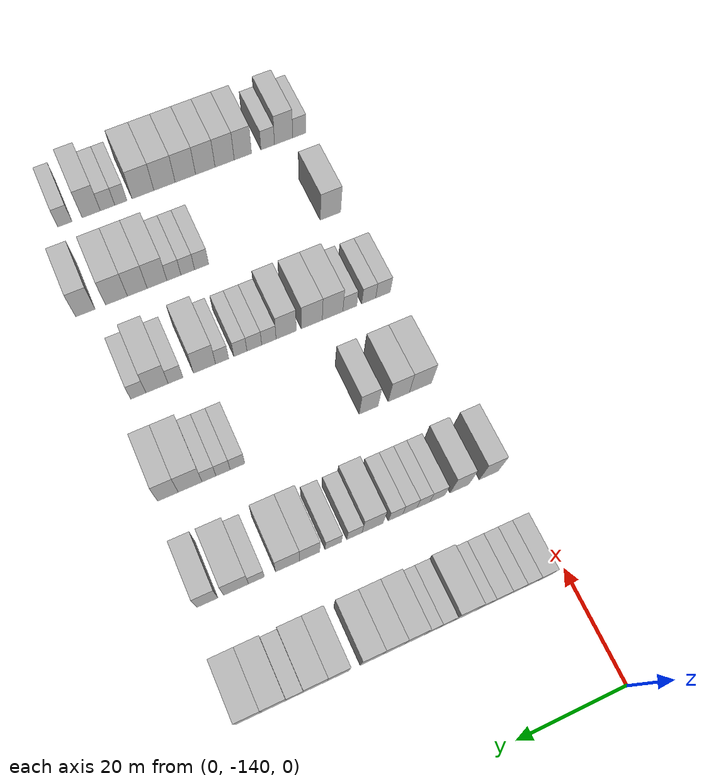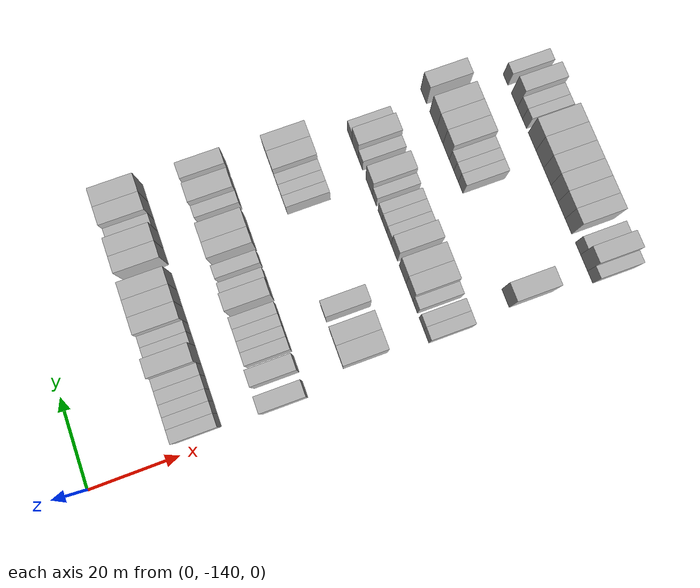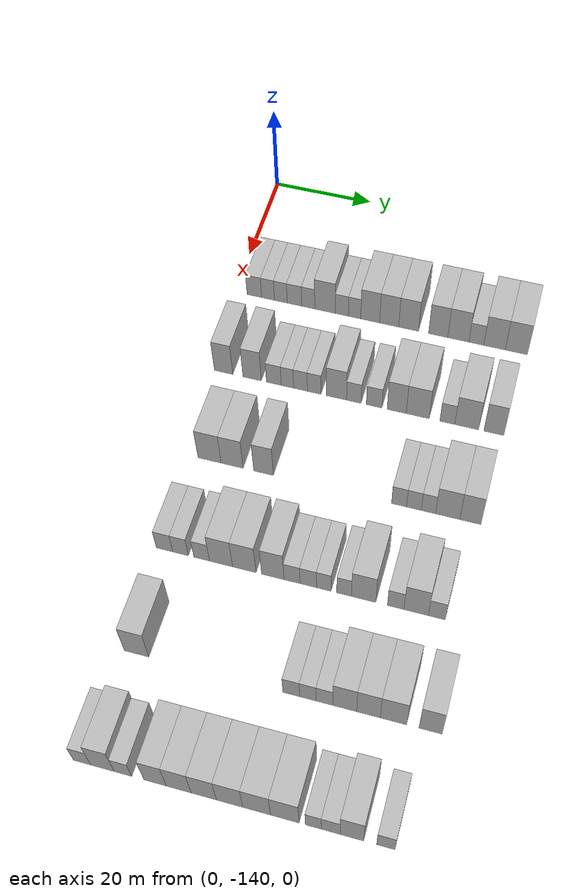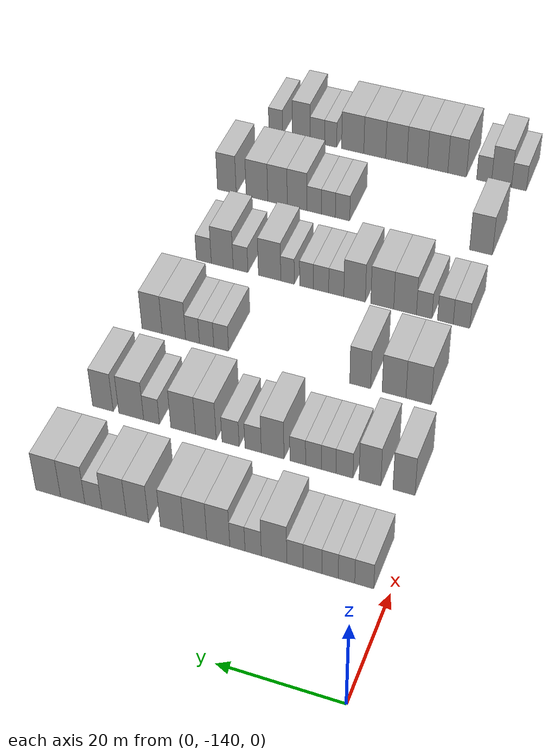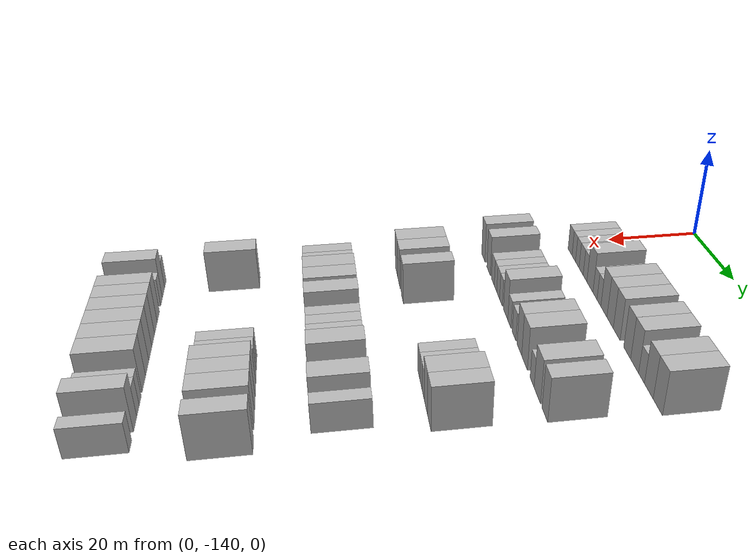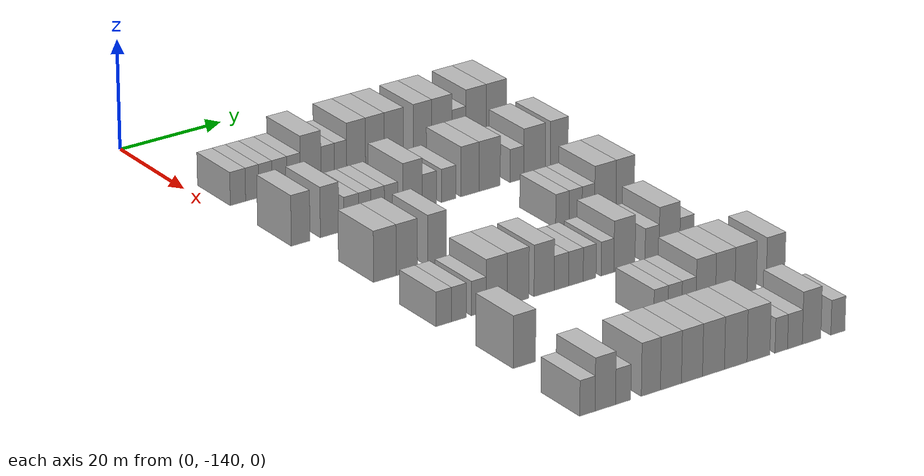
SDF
<sdf version="1.6">
 <world name="default">
  <model name="building_39">
   <static>1</static>
   <pose>25.0000 -135.8840 0 0.000000 0.000000 0.000000</pose>
   <link name="link">
    <pose>0 0 3.00 0 0 0</pose>
    <collision name="collision"><geometry><box><size>10.0000 2.9980 6.0000</size></box></geometry></collision>
    <visual name="visual">
     <cast_shadows>0</cast_shadows>
     <geometry><box><size>10.0000 2.9980 6.0000</size></box></geometry>
     <material>
      <script>
       <uri>model://HANNAS_wall/materials/scripts</uri>
       <uri>model://HANNAS_wall/materials/textures</uri>
       <name>vrc/HANNAS_wall</name>
      </script>
     </material>
    </visual>
   </link>
  </model>
  <model name="building_40">
   <static>1</static>
   <pose>25.0000 -133.0798 0 0.000000 0.000000 0.000000</pose>
   <link name="link">
    <pose>0 0 3.00 0 0 0</pose>
    <collision name="collision"><geometry><box><size>10.0000 2.6105 6.0000</size></box></geometry></collision>
    <visual name="visual">
     <cast_shadows>0</cast_shadows>
     <geometry><box><size>10.0000 2.6105 6.0000</size></box></geometry>
     <material>
      <script>
       <uri>model://HANNAS_wall/materials/scripts</uri>
       <uri>model://HANNAS_wall/materials/textures</uri>
       <name>vrc/HANNAS_wall</name>
      </script>
     </material>
    </visual>
   </link>
  </model>
  <model name="building_41">
   <static>1</static>
   <pose>25.0000 -130.4676 0 0.000000 0.000000 0.000000</pose>
   <link name="link">
    <pose>0 0 3.00 0 0 0</pose>
    <collision name="collision"><geometry><box><size>10.0000 2.6140 6.0000</size></box></geometry></collision>
    <visual name="visual">
     <cast_shadows>0</cast_shadows>
     <geometry><box><size>10.0000 2.6140 6.0000</size></box></geometry>
     <material>
      <script>
       <uri>model://HANNAS_wall/materials/scripts</uri>
       <uri>model://HANNAS_wall/materials/textures</uri>
       <name>vrc/HANNAS_wall</name>
      </script>
     </material>
    </visual>
   </link>
  </model>
  <model name="building_42">
   <static>1</static>
   <pose>25.0000 -127.6731 0 0.000000 0.000000 0.000000</pose>
   <link name="link">
    <pose>0 0 3.00 0 0 0</pose>
    <collision name="collision"><geometry><box><size>10.0000 2.9750 6.0000</size></box></geometry></collision>
    <visual name="visual">
     <cast_shadows>0</cast_shadows>
     <geometry><box><size>10.0000 2.9750 6.0000</size></box></geometry>
     <material>
      <script>
       <uri>model://HANNAS_wall/materials/scripts</uri>
       <uri>model://HANNAS_wall/materials/textures</uri>
       <name>vrc/HANNAS_wall</name>
      </script>
     </material>
    </visual>
   </link>
  </model>
  <model name="building_43">
   <static>1</static>
   <pose>25.0000 -124.8753 0 0.000000 0.000000 0.000000</pose>
   <link name="link">
    <pose>0 0 3.00 0 0 0</pose>
    <collision name="collision"><geometry><box><size>10.0000 2.6206 6.0000</size></box></geometry></collision>
    <visual name="visual">
     <cast_shadows>0</cast_shadows>
     <geometry><box><size>10.0000 2.6206 6.0000</size></box></geometry>
     <material>
      <script>
       <uri>model://HANNAS_wall/materials/scripts</uri>
       <uri>model://HANNAS_wall/materials/textures</uri>
       <name>vrc/HANNAS_wall</name>
      </script>
     </material>
    </visual>
   </link>
  </model>
  <model name="building_44">
   <static>1</static>
   <pose>25.0000 -121.4992 0 0.000000 0.000000 0.000000</pose>
   <link name="link">
    <pose>0 0 4.50 0 0 0</pose>
    <collision name="collision"><geometry><box><size>10.0000 4.1316 9.0000</size></box></geometry></collision>
    <visual name="visual">
     <cast_shadows>0</cast_shadows>
     <geometry><box><size>10.0000 4.1316 9.0000</size></box></geometry>
     <material>
      <script>
       <uri>model://HANNAS_wall/materials/scripts</uri>
       <uri>model://HANNAS_wall/materials/textures</uri>
       <name>vrc/HANNAS_wall</name>
      </script>
     </material>
    </visual>
   </link>
  </model>
  <model name="building_45">
   <static>1</static>
   <pose>25.0000 -118.1087 0 0.000000 0.000000 0.000000</pose>
   <link name="link">
    <pose>0 0 3.00 0 0 0</pose>
    <collision name="collision"><geometry><box><size>10.0000 2.6494 6.0000</size></box></geometry></collision>
    <visual name="visual">
     <cast_shadows>0</cast_shadows>
     <geometry><box><size>10.0000 2.6494 6.0000</size></box></geometry>
     <material>
      <script>
       <uri>model://HANNAS_wall/materials/scripts</uri>
       <uri>model://HANNAS_wall/materials/textures</uri>
       <name>vrc/HANNAS_wall</name>
      </script>
     </material>
    </visual>
   </link>
  </model>
  <model name="building_46">
   <static>1</static>
   <pose>25.0000 -115.5429 0 0.000000 0.000000 0.000000</pose>
   <link name="link">
    <pose>0 0 3.00 0 0 0</pose>
    <collision name="collision"><geometry><box><size>10.0000 2.4822 6.0000</size></box></geometry></collision>
    <visual name="visual">
     <cast_shadows>0</cast_shadows>
     <geometry><box><size>10.0000 2.4822 6.0000</size></box></geometry>
     <material>
      <script>
       <uri>model://HANNAS_wall/materials/scripts</uri>
       <uri>model://HANNAS_wall/materials/textures</uri>
       <name>vrc/HANNAS_wall</name>
      </script>
     </material>
    </visual>
   </link>
  </model>
  <model name="building_47">
   <static>1</static>
   <pose>25.0000 -112.4067 0 0.000000 0.000000 0.000000</pose>
   <link name="link">
    <pose>0 0 4.50 0 0 0</pose>
    <collision name="collision"><geometry><box><size>10.0000 3.7904 9.0000</size></box></geometry></collision>
    <visual name="visual">
     <cast_shadows>0</cast_shadows>
     <geometry><box><size>10.0000 3.7904 9.0000</size></box></geometry>
     <material>
      <script>
       <uri>model://HANNAS_wall/materials/scripts</uri>
       <uri>model://HANNAS_wall/materials/textures</uri>
       <name>vrc/HANNAS_wall</name>
      </script>
     </material>
    </visual>
   </link>
  </model>
  <model name="building_48">
   <static>1</static>
   <pose>25.0000 -108.6141 0 0.000000 0.000000 0.000000</pose>
   <link name="link">
    <pose>0 0 4.50 0 0 0</pose>
    <collision name="collision"><geometry><box><size>10.0000 3.7948 9.0000</size></box></geometry></collision>
    <visual name="visual">
     <cast_shadows>0</cast_shadows>
     <geometry><box><size>10.0000 3.7948 9.0000</size></box></geometry>
     <material>
      <script>
       <uri>model://HANNAS_wall/materials/scripts</uri>
       <uri>model://HANNAS_wall/materials/textures</uri>
       <name>vrc/HANNAS_wall</name>
      </script>
     </material>
    </visual>
   </link>
  </model>
  <model name="building_49">
   <static>1</static>
   <pose>25.0000 -104.7550 0 0.000000 0.000000 0.000000</pose>
   <link name="link">
    <pose>0 0 4.50 0 0 0</pose>
    <collision name="collision"><geometry><box><size>10.0000 3.9233 9.0000</size></box></geometry></collision>
    <visual name="visual">
     <cast_shadows>0</cast_shadows>
     <geometry><box><size>10.0000 3.9233 9.0000</size></box></geometry>
     <material>
      <script>
       <uri>model://HANNAS_wall/materials/scripts</uri>
       <uri>model://HANNAS_wall/materials/textures</uri>
       <name>vrc/HANNAS_wall</name>
      </script>
     </material>
    </visual>
   </link>
  </model>
  <model name="building_50">
   <static>1</static>
   <pose>25.0000 -98.9192 0 0.000000 0.000000 0.000000</pose>
   <link name="link">
    <pose>0 0 4.50 0 0 0</pose>
    <collision name="collision"><geometry><box><size>10.0000 3.7483 9.0000</size></box></geometry></collision>
    <visual name="visual">
     <cast_shadows>0</cast_shadows>
     <geometry><box><size>10.0000 3.7483 9.0000</size></box></geometry>
     <material>
      <script>
       <uri>model://HANNAS_wall/materials/scripts</uri>
       <uri>model://HANNAS_wall/materials/textures</uri>
       <name>vrc/HANNAS_wall</name>
      </script>
     </material>
    </visual>
   </link>
  </model>
  <model name="building_51">
   <static>1</static>
   <pose>25.0000 -94.9759 0 0.000000 0.000000 0.000000</pose>
   <link name="link">
    <pose>0 0 4.50 0 0 0</pose>
    <collision name="collision"><geometry><box><size>10.0000 4.1382 9.0000</size></box></geometry></collision>
    <visual name="visual">
     <cast_shadows>0</cast_shadows>
     <geometry><box><size>10.0000 4.1382 9.0000</size></box></geometry>
     <material>
      <script>
       <uri>model://HANNAS_wall/materials/scripts</uri>
       <uri>model://HANNAS_wall/materials/textures</uri>
       <name>vrc/HANNAS_wall</name>
      </script>
     </material>
    </visual>
   </link>
  </model>
  <model name="building_52">
   <static>1</static>
   <pose>25.0000 -91.4587 0 0.000000 0.000000 0.000000</pose>
   <link name="link">
    <pose>0 0 3.00 0 0 0</pose>
    <collision name="collision"><geometry><box><size>10.0000 2.8963 6.0000</size></box></geometry></collision>
    <visual name="visual">
     <cast_shadows>0</cast_shadows>
     <geometry><box><size>10.0000 2.8963 6.0000</size></box></geometry>
     <material>
      <script>
       <uri>model://HANNAS_wall/materials/scripts</uri>
       <uri>model://HANNAS_wall/materials/textures</uri>
       <name>vrc/HANNAS_wall</name>
      </script>
     </material>
    </visual>
   </link>
  </model>
  <model name="building_53">
   <static>1</static>
   <pose>25.0000 -87.9144 0 0.000000 0.000000 0.000000</pose>
   <link name="link">
    <pose>0 0 4.50 0 0 0</pose>
    <collision name="collision"><geometry><box><size>10.0000 4.1924 9.0000</size></box></geometry></collision>
    <visual name="visual">
     <cast_shadows>0</cast_shadows>
     <geometry><box><size>10.0000 4.1924 9.0000</size></box></geometry>
     <material>
      <script>
       <uri>model://HANNAS_wall/materials/scripts</uri>
       <uri>model://HANNAS_wall/materials/textures</uri>
       <name>vrc/HANNAS_wall</name>
      </script>
     </material>
    </visual>
   </link>
  </model>
  <model name="building_54">
   <static>1</static>
   <pose>25.0000 -83.6774 0 0.000000 0.000000 0.000000</pose>
   <link name="link">
    <pose>0 0 4.50 0 0 0</pose>
    <collision name="collision"><geometry><box><size>10.0000 4.2815 9.0000</size></box></geometry></collision>
    <visual name="visual">
     <cast_shadows>0</cast_shadows>
     <geometry><box><size>10.0000 4.2815 9.0000</size></box></geometry>
     <material>
      <script>
       <uri>model://HANNAS_wall/materials/scripts</uri>
       <uri>model://HANNAS_wall/materials/textures</uri>
       <name>vrc/HANNAS_wall</name>
      </script>
     </material>
    </visual>
   </link>
  </model>
  <model name="building_210">
   <static>1</static>
   <pose>44.0000 -136.1075 0 0.000000 0.000000 0.000000</pose>
   <link name="link">
    <pose>0 0 4.50 0 0 0</pose>
    <collision name="collision"><geometry><box><size>10.0000 3.6342 9.0000</size></box></geometry></collision>
    <visual name="visual">
     <cast_shadows>0</cast_shadows>
     <geometry><box><size>10.0000 3.6342 9.0000</size></box></geometry>
     <material>
      <script>
       <uri>model://HANNAS_wall/materials/scripts</uri>
       <uri>model://HANNAS_wall/materials/textures</uri>
       <name>vrc/HANNAS_wall</name>
      </script>
     </material>
    </visual>
   </link>
  </model>
  <model name="building_211">
   <static>1</static>
   <pose>44.0000 -130.4828 0 0.000000 0.000000 0.000000</pose>
   <link name="link">
    <pose>0 0 4.50 0 0 0</pose>
    <collision name="collision"><geometry><box><size>10.0000 3.6153 9.0000</size></box></geometry></collision>
    <visual name="visual">
     <cast_shadows>0</cast_shadows>
     <geometry><box><size>10.0000 3.6153 9.0000</size></box></geometry>
     <material>
      <script>
       <uri>model://HANNAS_wall/materials/scripts</uri>
       <uri>model://HANNAS_wall/materials/textures</uri>
       <name>vrc/HANNAS_wall</name>
      </script>
     </material>
    </visual>
   </link>
  </model>
  <model name="building_212">
   <static>1</static>
   <pose>44.0000 -126.2395 0 0.000000 0.000000 0.000000</pose>
   <link name="link">
    <pose>0 0 3.00 0 0 0</pose>
    <collision name="collision"><geometry><box><size>10.0000 2.8714 6.0000</size></box></geometry></collision>
    <visual name="visual">
     <cast_shadows>0</cast_shadows>
     <geometry><box><size>10.0000 2.8714 6.0000</size></box></geometry>
     <material>
      <script>
       <uri>model://HANNAS_wall/materials/scripts</uri>
       <uri>model://HANNAS_wall/materials/textures</uri>
       <name>vrc/HANNAS_wall</name>
      </script>
     </material>
    </visual>
   </link>
  </model>
  <model name="building_213">
   <static>1</static>
   <pose>44.0000 -123.5858 0 0.000000 0.000000 0.000000</pose>
   <link name="link">
    <pose>0 0 3.00 0 0 0</pose>
    <collision name="collision"><geometry><box><size>10.0000 2.4358 6.0000</size></box></geometry></collision>
    <visual name="visual">
     <cast_shadows>0</cast_shadows>
     <geometry><box><size>10.0000 2.4358 6.0000</size></box></geometry>
     <material>
      <script>
       <uri>model://HANNAS_wall/materials/scripts</uri>
       <uri>model://HANNAS_wall/materials/textures</uri>
       <name>vrc/HANNAS_wall</name>
      </script>
     </material>
    </visual>
   </link>
  </model>
  <model name="building_214">
   <static>1</static>
   <pose>44.0000 -121.0321 0 0.000000 0.000000 0.000000</pose>
   <link name="link">
    <pose>0 0 3.00 0 0 0</pose>
    <collision name="collision"><geometry><box><size>10.0000 2.6716 6.0000</size></box></geometry></collision>
    <visual name="visual">
     <cast_shadows>0</cast_shadows>
     <geometry><box><size>10.0000 2.6716 6.0000</size></box></geometry>
     <material>
      <script>
       <uri>model://HANNAS_wall/materials/scripts</uri>
       <uri>model://HANNAS_wall/materials/textures</uri>
       <name>vrc/HANNAS_wall</name>
      </script>
     </material>
    </visual>
   </link>
  </model>
  <model name="building_215">
   <static>1</static>
   <pose>44.0000 -118.3728 0 0.000000 0.000000 0.000000</pose>
   <link name="link">
    <pose>0 0 3.00 0 0 0</pose>
    <collision name="collision"><geometry><box><size>10.0000 2.6471 6.0000</size></box></geometry></collision>
    <visual name="visual">
     <cast_shadows>0</cast_shadows>
     <geometry><box><size>10.0000 2.6471 6.0000</size></box></geometry>
     <material>
      <script>
       <uri>model://HANNAS_wall/materials/scripts</uri>
       <uri>model://HANNAS_wall/materials/textures</uri>
       <name>vrc/HANNAS_wall</name>
      </script>
     </material>
    </visual>
   </link>
  </model>
  <model name="building_216">
   <static>1</static>
   <pose>44.0000 -114.1024 0 0.000000 0.000000 0.000000</pose>
   <link name="link">
    <pose>0 0 4.50 0 0 0</pose>
    <collision name="collision"><geometry><box><size>10.0000 3.8936 9.0000</size></box></geometry></collision>
    <visual name="visual">
     <cast_shadows>0</cast_shadows>
     <geometry><box><size>10.0000 3.8936 9.0000</size></box></geometry>
     <material>
      <script>
       <uri>model://HANNAS_wall/materials/scripts</uri>
       <uri>model://HANNAS_wall/materials/textures</uri>
       <name>vrc/HANNAS_wall</name>
      </script>
     </material>
    </visual>
   </link>
  </model>
  <model name="building_217">
   <static>1</static>
   <pose>44.0000 -110.7569 0 0.000000 0.000000 0.000000</pose>
   <link name="link">
    <pose>0 0 3.00 0 0 0</pose>
    <collision name="collision"><geometry><box><size>10.0000 2.7974 6.0000</size></box></geometry></collision>
    <visual name="visual">
     <cast_shadows>0</cast_shadows>
     <geometry><box><size>10.0000 2.7974 6.0000</size></box></geometry>
     <material>
      <script>
       <uri>model://HANNAS_wall/materials/scripts</uri>
       <uri>model://HANNAS_wall/materials/textures</uri>
       <name>vrc/HANNAS_wall</name>
      </script>
     </material>
    </visual>
   </link>
  </model>
  <model name="building_218">
   <static>1</static>
   <pose>44.0000 -106.8713 0 0.000000 0.000000 0.000000</pose>
   <link name="link">
    <pose>0 0 3.00 0 0 0</pose>
    <collision name="collision"><geometry><box><size>10.0000 2.9740 6.0000</size></box></geometry></collision>
    <visual name="visual">
     <cast_shadows>0</cast_shadows>
     <geometry><box><size>10.0000 2.9740 6.0000</size></box></geometry>
     <material>
      <script>
       <uri>model://HANNAS_wall/materials/scripts</uri>
       <uri>model://HANNAS_wall/materials/textures</uri>
       <name>vrc/HANNAS_wall</name>
      </script>
     </material>
    </visual>
   </link>
  </model>
  <model name="building_219">
   <static>1</static>
   <pose>44.0000 -102.5783 0 0.000000 0.000000 0.000000</pose>
   <link name="link">
    <pose>0 0 4.50 0 0 0</pose>
    <collision name="collision"><geometry><box><size>10.0000 3.6120 9.0000</size></box></geometry></collision>
    <visual name="visual">
     <cast_shadows>0</cast_shadows>
     <geometry><box><size>10.0000 3.6120 9.0000</size></box></geometry>
     <material>
      <script>
       <uri>model://HANNAS_wall/materials/scripts</uri>
       <uri>model://HANNAS_wall/materials/textures</uri>
       <name>vrc/HANNAS_wall</name>
      </script>
     </material>
    </visual>
   </link>
  </model>
  <model name="building_220">
   <static>1</static>
   <pose>44.0000 -98.6021 0 0.000000 0.000000 0.000000</pose>
   <link name="link">
    <pose>0 0 4.50 0 0 0</pose>
    <collision name="collision"><geometry><box><size>10.0000 4.3403 9.0000</size></box></geometry></collision>
    <visual name="visual">
     <cast_shadows>0</cast_shadows>
     <geometry><box><size>10.0000 4.3403 9.0000</size></box></geometry>
     <material>
      <script>
       <uri>model://HANNAS_wall/materials/scripts</uri>
       <uri>model://HANNAS_wall/materials/textures</uri>
       <name>vrc/HANNAS_wall</name>
      </script>
     </material>
    </visual>
   </link>
  </model>
  <model name="building_221">
   <static>1</static>
   <pose>44.0000 -93.0292 0 0.000000 0.000000 0.000000</pose>
   <link name="link">
    <pose>0 0 3.00 0 0 0</pose>
    <collision name="collision"><geometry><box><size>10.0000 2.8056 6.0000</size></box></geometry></collision>
    <visual name="visual">
     <cast_shadows>0</cast_shadows>
     <geometry><box><size>10.0000 2.8056 6.0000</size></box></geometry>
     <material>
      <script>
       <uri>model://HANNAS_wall/materials/scripts</uri>
       <uri>model://HANNAS_wall/materials/textures</uri>
       <name>vrc/HANNAS_wall</name>
      </script>
     </material>
    </visual>
   </link>
  </model>
  <model name="building_222">
   <static>1</static>
   <pose>44.0000 -89.4139 0 0.000000 0.000000 0.000000</pose>
   <link name="link">
    <pose>0 0 4.50 0 0 0</pose>
    <collision name="collision"><geometry><box><size>10.0000 4.4248 9.0000</size></box></geometry></collision>
    <visual name="visual">
     <cast_shadows>0</cast_shadows>
     <geometry><box><size>10.0000 4.4248 9.0000</size></box></geometry>
     <material>
      <script>
       <uri>model://HANNAS_wall/materials/scripts</uri>
       <uri>model://HANNAS_wall/materials/textures</uri>
       <name>vrc/HANNAS_wall</name>
      </script>
     </material>
    </visual>
   </link>
  </model>
  <model name="building_223">
   <static>1</static>
   <pose>44.0000 -84.3524 0 0.000000 0.000000 0.000000</pose>
   <link name="link">
    <pose>0 0 4.50 0 0 0</pose>
    <collision name="collision"><geometry><box><size>10.0000 3.6982 9.0000</size></box></geometry></collision>
    <visual name="visual">
     <cast_shadows>0</cast_shadows>
     <geometry><box><size>10.0000 3.6982 9.0000</size></box></geometry>
     <material>
      <script>
       <uri>model://HANNAS_wall/materials/scripts</uri>
       <uri>model://HANNAS_wall/materials/textures</uri>
       <name>vrc/HANNAS_wall</name>
      </script>
     </material>
    </visual>
   </link>
  </model>
  <model name="building_388">
   <static>1</static>
   <pose>63.0000 -132.6268 0 0.000000 0.000000 0.000000</pose>
   <link name="link">
    <pose>0 0 4.50 0 0 0</pose>
    <collision name="collision"><geometry><box><size>10.0000 4.3635 9.0000</size></box></geometry></collision>
    <visual name="visual">
     <cast_shadows>0</cast_shadows>
     <geometry><box><size>10.0000 4.3635 9.0000</size></box></geometry>
     <material>
      <script>
       <uri>model://HANNAS_wall/materials/scripts</uri>
       <uri>model://HANNAS_wall/materials/textures</uri>
       <name>vrc/HANNAS_wall</name>
      </script>
     </material>
    </visual>
   </link>
  </model>
  <model name="building_389">
   <static>1</static>
   <pose>63.0000 -128.3770 0 0.000000 0.000000 0.000000</pose>
   <link name="link">
    <pose>0 0 4.50 0 0 0</pose>
    <collision name="collision"><geometry><box><size>10.0000 4.1362 9.0000</size></box></geometry></collision>
    <visual name="visual">
     <cast_shadows>0</cast_shadows>
     <geometry><box><size>10.0000 4.1362 9.0000</size></box></geometry>
     <material>
      <script>
       <uri>model://HANNAS_wall/materials/scripts</uri>
       <uri>model://HANNAS_wall/materials/textures</uri>
       <name>vrc/HANNAS_wall</name>
      </script>
     </material>
    </visual>
   </link>
  </model>
  <model name="building_390">
   <static>1</static>
   <pose>63.0000 -122.4811 0 0.000000 0.000000 0.000000</pose>
   <link name="link">
    <pose>0 0 4.50 0 0 0</pose>
    <collision name="collision"><geometry><box><size>10.0000 3.6556 9.0000</size></box></geometry></collision>
    <visual name="visual">
     <cast_shadows>0</cast_shadows>
     <geometry><box><size>10.0000 3.6556 9.0000</size></box></geometry>
     <material>
      <script>
       <uri>model://HANNAS_wall/materials/scripts</uri>
       <uri>model://HANNAS_wall/materials/textures</uri>
       <name>vrc/HANNAS_wall</name>
      </script>
     </material>
    </visual>
   </link>
  </model>
  <model name="building_391">
   <static>1</static>
   <pose>63.0000 -97.6063 0 0.000000 0.000000 0.000000</pose>
   <link name="link">
    <pose>0 0 3.00 0 0 0</pose>
    <collision name="collision"><geometry><box><size>10.0000 2.6980 6.0000</size></box></geometry></collision>
    <visual name="visual">
     <cast_shadows>0</cast_shadows>
     <geometry><box><size>10.0000 2.6980 6.0000</size></box></geometry>
     <material>
      <script>
       <uri>model://HANNAS_wall/materials/scripts</uri>
       <uri>model://HANNAS_wall/materials/textures</uri>
       <name>vrc/HANNAS_wall</name>
      </script>
     </material>
    </visual>
   </link>
  </model>
  <model name="building_392">
   <static>1</static>
   <pose>63.0000 -94.9415 0 0.000000 0.000000 0.000000</pose>
   <link name="link">
    <pose>0 0 3.00 0 0 0</pose>
    <collision name="collision"><geometry><box><size>10.0000 2.6317 6.0000</size></box></geometry></collision>
    <visual name="visual">
     <cast_shadows>0</cast_shadows>
     <geometry><box><size>10.0000 2.6317 6.0000</size></box></geometry>
     <material>
      <script>
       <uri>model://HANNAS_wall/materials/scripts</uri>
       <uri>model://HANNAS_wall/materials/textures</uri>
       <name>vrc/HANNAS_wall</name>
      </script>
     </material>
    </visual>
   </link>
  </model>
  <model name="building_393">
   <static>1</static>
   <pose>63.0000 -92.3491 0 0.000000 0.000000 0.000000</pose>
   <link name="link">
    <pose>0 0 3.00 0 0 0</pose>
    <collision name="collision"><geometry><box><size>10.0000 2.5532 6.0000</size></box></geometry></collision>
    <visual name="visual">
     <cast_shadows>0</cast_shadows>
     <geometry><box><size>10.0000 2.5532 6.0000</size></box></geometry>
     <material>
      <script>
       <uri>model://HANNAS_wall/materials/scripts</uri>
       <uri>model://HANNAS_wall/materials/textures</uri>
       <name>vrc/HANNAS_wall</name>
      </script>
     </material>
    </visual>
   </link>
  </model>
  <model name="building_394">
   <static>1</static>
   <pose>63.0000 -88.8961 0 0.000000 0.000000 0.000000</pose>
   <link name="link">
    <pose>0 0 4.50 0 0 0</pose>
    <collision name="collision"><geometry><box><size>10.0000 4.3529 9.0000</size></box></geometry></collision>
    <visual name="visual">
     <cast_shadows>0</cast_shadows>
     <geometry><box><size>10.0000 4.3529 9.0000</size></box></geometry>
     <material>
      <script>
       <uri>model://HANNAS_wall/materials/scripts</uri>
       <uri>model://HANNAS_wall/materials/textures</uri>
       <name>vrc/HANNAS_wall</name>
      </script>
     </material>
    </visual>
   </link>
  </model>
  <model name="building_395">
   <static>1</static>
   <pose>63.0000 -84.8419 0 0.000000 0.000000 0.000000</pose>
   <link name="link">
    <pose>0 0 4.50 0 0 0</pose>
    <collision name="collision"><geometry><box><size>10.0000 3.7554 9.0000</size></box></geometry></collision>
    <visual name="visual">
     <cast_shadows>0</cast_shadows>
     <geometry><box><size>10.0000 3.7554 9.0000</size></box></geometry>
     <material>
      <script>
       <uri>model://HANNAS_wall/materials/scripts</uri>
       <uri>model://HANNAS_wall/materials/textures</uri>
       <name>vrc/HANNAS_wall</name>
      </script>
     </material>
    </visual>
   </link>
  </model>
  <model name="building_562">
   <static>1</static>
   <pose>82.0000 -134.4826 0 0.000000 0.000000 0.000000</pose>
   <link name="link">
    <pose>0 0 3.00 0 0 0</pose>
    <collision name="collision"><geometry><box><size>10.0000 2.9654 6.0000</size></box></geometry></collision>
    <visual name="visual">
     <cast_shadows>0</cast_shadows>
     <geometry><box><size>10.0000 2.9654 6.0000</size></box></geometry>
     <material>
      <script>
       <uri>model://HANNAS_wall/materials/scripts</uri>
       <uri>model://HANNAS_wall/materials/textures</uri>
       <name>vrc/HANNAS_wall</name>
      </script>
     </material>
    </visual>
   </link>
  </model>
  <model name="building_563">
   <static>1</static>
   <pose>82.0000 -131.5884 0 0.000000 0.000000 0.000000</pose>
   <link name="link">
    <pose>0 0 3.00 0 0 0</pose>
    <collision name="collision"><geometry><box><size>10.0000 2.8230 6.0000</size></box></geometry></collision>
    <visual name="visual">
     <cast_shadows>0</cast_shadows>
     <geometry><box><size>10.0000 2.8230 6.0000</size></box></geometry>
     <material>
      <script>
       <uri>model://HANNAS_wall/materials/scripts</uri>
       <uri>model://HANNAS_wall/materials/textures</uri>
       <name>vrc/HANNAS_wall</name>
      </script>
     </material>
    </visual>
   </link>
  </model>
  <model name="building_564">
   <static>1</static>
   <pose>82.0000 -127.7728 0 0.000000 0.000000 0.000000</pose>
   <link name="link">
    <pose>0 0 3.00 0 0 0</pose>
    <collision name="collision"><geometry><box><size>10.0000 2.8082 6.0000</size></box></geometry></collision>
    <visual name="visual">
     <cast_shadows>0</cast_shadows>
     <geometry><box><size>10.0000 2.8082 6.0000</size></box></geometry>
     <material>
      <script>
       <uri>model://HANNAS_wall/materials/scripts</uri>
       <uri>model://HANNAS_wall/materials/textures</uri>
       <name>vrc/HANNAS_wall</name>
      </script>
     </material>
    </visual>
   </link>
  </model>
  <model name="building_565">
   <static>1</static>
   <pose>82.0000 -124.3037 0 0.000000 0.000000 0.000000</pose>
   <link name="link">
    <pose>0 0 4.50 0 0 0</pose>
    <collision name="collision"><geometry><box><size>10.0000 4.1300 9.0000</size></box></geometry></collision>
    <visual name="visual">
     <cast_shadows>0</cast_shadows>
     <geometry><box><size>10.0000 4.1300 9.0000</size></box></geometry>
     <material>
      <script>
       <uri>model://HANNAS_wall/materials/scripts</uri>
       <uri>model://HANNAS_wall/materials/textures</uri>
       <name>vrc/HANNAS_wall</name>
      </script>
     </material>
    </visual>
   </link>
  </model>
  <model name="building_566">
   <static>1</static>
   <pose>82.0000 -120.1458 0 0.000000 0.000000 0.000000</pose>
   <link name="link">
    <pose>0 0 4.50 0 0 0</pose>
    <collision name="collision"><geometry><box><size>10.0000 4.1858 9.0000</size></box></geometry></collision>
    <visual name="visual">
     <cast_shadows>0</cast_shadows>
     <geometry><box><size>10.0000 4.1858 9.0000</size></box></geometry>
     <material>
      <script>
       <uri>model://HANNAS_wall/materials/scripts</uri>
       <uri>model://HANNAS_wall/materials/textures</uri>
       <name>vrc/HANNAS_wall</name>
      </script>
     </material>
    </visual>
   </link>
  </model>
  <model name="building_567">
   <static>1</static>
   <pose>82.0000 -115.0728 0 0.000000 0.000000 0.000000</pose>
   <link name="link">
    <pose>0 0 4.50 0 0 0</pose>
    <collision name="collision"><geometry><box><size>10.0000 3.9602 9.0000</size></box></geometry></collision>
    <visual name="visual">
     <cast_shadows>0</cast_shadows>
     <geometry><box><size>10.0000 3.9602 9.0000</size></box></geometry>
     <material>
      <script>
       <uri>model://HANNAS_wall/materials/scripts</uri>
       <uri>model://HANNAS_wall/materials/textures</uri>
       <name>vrc/HANNAS_wall</name>
      </script>
     </material>
    </visual>
   </link>
  </model>
  <model name="building_568">
   <static>1</static>
   <pose>82.0000 -111.6844 0 0.000000 0.000000 0.000000</pose>
   <link name="link">
    <pose>0 0 3.00 0 0 0</pose>
    <collision name="collision"><geometry><box><size>10.0000 2.8167 6.0000</size></box></geometry></collision>
    <visual name="visual">
     <cast_shadows>0</cast_shadows>
     <geometry><box><size>10.0000 2.8167 6.0000</size></box></geometry>
     <material>
      <script>
       <uri>model://HANNAS_wall/materials/scripts</uri>
       <uri>model://HANNAS_wall/materials/textures</uri>
       <name>vrc/HANNAS_wall</name>
      </script>
     </material>
    </visual>
   </link>
  </model>
  <model name="building_569">
   <static>1</static>
   <pose>82.0000 -108.8393 0 0.000000 0.000000 0.000000</pose>
   <link name="link">
    <pose>0 0 3.00 0 0 0</pose>
    <collision name="collision"><geometry><box><size>10.0000 2.8734 6.0000</size></box></geometry></collision>
    <visual name="visual">
     <cast_shadows>0</cast_shadows>
     <geometry><box><size>10.0000 2.8734 6.0000</size></box></geometry>
     <material>
      <script>
       <uri>model://HANNAS_wall/materials/scripts</uri>
       <uri>model://HANNAS_wall/materials/textures</uri>
       <name>vrc/HANNAS_wall</name>
      </script>
     </material>
    </visual>
   </link>
  </model>
  <model name="building_570">
   <static>1</static>
   <pose>82.0000 -106.1286 0 0.000000 0.000000 0.000000</pose>
   <link name="link">
    <pose>0 0 3.00 0 0 0</pose>
    <collision name="collision"><geometry><box><size>10.0000 2.5481 6.0000</size></box></geometry></collision>
    <visual name="visual">
     <cast_shadows>0</cast_shadows>
     <geometry><box><size>10.0000 2.5481 6.0000</size></box></geometry>
     <material>
      <script>
       <uri>model://HANNAS_wall/materials/scripts</uri>
       <uri>model://HANNAS_wall/materials/textures</uri>
       <name>vrc/HANNAS_wall</name>
      </script>
     </material>
    </visual>
   </link>
  </model>
  <model name="building_571">
   <static>1</static>
   <pose>82.0000 -102.5843 0 0.000000 0.000000 0.000000</pose>
   <link name="link">
    <pose>0 0 3.00 0 0 0</pose>
    <collision name="collision"><geometry><box><size>10.0000 2.5404 6.0000</size></box></geometry></collision>
    <visual name="visual">
     <cast_shadows>0</cast_shadows>
     <geometry><box><size>10.0000 2.5404 6.0000</size></box></geometry>
     <material>
      <script>
       <uri>model://HANNAS_wall/materials/scripts</uri>
       <uri>model://HANNAS_wall/materials/textures</uri>
       <name>vrc/HANNAS_wall</name>
      </script>
     </material>
    </visual>
   </link>
  </model>
  <model name="building_572">
   <static>1</static>
   <pose>82.0000 -99.2007 0 0.000000 0.000000 0.000000</pose>
   <link name="link">
    <pose>0 0 4.50 0 0 0</pose>
    <collision name="collision"><geometry><box><size>10.0000 4.2269 9.0000</size></box></geometry></collision>
    <visual name="visual">
     <cast_shadows>0</cast_shadows>
     <geometry><box><size>10.0000 4.2269 9.0000</size></box></geometry>
     <material>
      <script>
       <uri>model://HANNAS_wall/materials/scripts</uri>
       <uri>model://HANNAS_wall/materials/textures</uri>
       <name>vrc/HANNAS_wall</name>
      </script>
     </material>
    </visual>
   </link>
  </model>
  <model name="building_573">
   <static>1</static>
   <pose>82.0000 -93.6771 0 0.000000 0.000000 0.000000</pose>
   <link name="link">
    <pose>0 0 3.00 0 0 0</pose>
    <collision name="collision"><geometry><box><size>10.0000 2.8203 6.0000</size></box></geometry></collision>
    <visual name="visual">
     <cast_shadows>0</cast_shadows>
     <geometry><box><size>10.0000 2.8203 6.0000</size></box></geometry>
     <material>
      <script>
       <uri>model://HANNAS_wall/materials/scripts</uri>
       <uri>model://HANNAS_wall/materials/textures</uri>
       <name>vrc/HANNAS_wall</name>
      </script>
     </material>
    </visual>
   </link>
  </model>
  <model name="building_574">
   <static>1</static>
   <pose>82.0000 -90.1739 0 0.000000 0.000000 0.000000</pose>
   <link name="link">
    <pose>0 0 4.50 0 0 0</pose>
    <collision name="collision"><geometry><box><size>10.0000 4.1860 9.0000</size></box></geometry></collision>
    <visual name="visual">
     <cast_shadows>0</cast_shadows>
     <geometry><box><size>10.0000 4.1860 9.0000</size></box></geometry>
     <material>
      <script>
       <uri>model://HANNAS_wall/materials/scripts</uri>
       <uri>model://HANNAS_wall/materials/textures</uri>
       <name>vrc/HANNAS_wall</name>
      </script>
     </material>
    </visual>
   </link>
  </model>
  <model name="building_575">
   <static>1</static>
   <pose>82.0000 -86.6425 0 0.000000 0.000000 0.000000</pose>
   <link name="link">
    <pose>0 0 3.00 0 0 0</pose>
    <collision name="collision"><geometry><box><size>10.0000 2.8769 6.0000</size></box></geometry></collision>
    <visual name="visual">
     <cast_shadows>0</cast_shadows>
     <geometry><box><size>10.0000 2.8769 6.0000</size></box></geometry>
     <material>
      <script>
       <uri>model://HANNAS_wall/materials/scripts</uri>
       <uri>model://HANNAS_wall/materials/textures</uri>
       <name>vrc/HANNAS_wall</name>
      </script>
     </material>
    </visual>
   </link>
  </model>
  <model name="building_736">
   <static>1</static>
   <pose>101.0000 -132.6321 0 0.000000 0.000000 0.000000</pose>
   <link name="link">
    <pose>0 0 4.50 0 0 0</pose>
    <collision name="collision"><geometry><box><size>10.0000 4.2534 9.0000</size></box></geometry></collision>
    <visual name="visual">
     <cast_shadows>0</cast_shadows>
     <geometry><box><size>10.0000 4.2534 9.0000</size></box></geometry>
     <material>
      <script>
       <uri>model://HANNAS_wall/materials/scripts</uri>
       <uri>model://HANNAS_wall/materials/textures</uri>
       <name>vrc/HANNAS_wall</name>
      </script>
     </material>
    </visual>
   </link>
  </model>
  <model name="building_737">
   <static>1</static>
   <pose>101.0000 -106.3034 0 0.000000 0.000000 0.000000</pose>
   <link name="link">
    <pose>0 0 3.00 0 0 0</pose>
    <collision name="collision"><geometry><box><size>10.0000 2.8013 6.0000</size></box></geometry></collision>
    <visual name="visual">
     <cast_shadows>0</cast_shadows>
     <geometry><box><size>10.0000 2.8013 6.0000</size></box></geometry>
     <material>
      <script>
       <uri>model://HANNAS_wall/materials/scripts</uri>
       <uri>model://HANNAS_wall/materials/textures</uri>
       <name>vrc/HANNAS_wall</name>
      </script>
     </material>
    </visual>
   </link>
  </model>
  <model name="building_738">
   <static>1</static>
   <pose>101.0000 -103.5430 0 0.000000 0.000000 0.000000</pose>
   <link name="link">
    <pose>0 0 3.00 0 0 0</pose>
    <collision name="collision"><geometry><box><size>10.0000 2.7196 6.0000</size></box></geometry></collision>
    <visual name="visual">
     <cast_shadows>0</cast_shadows>
     <geometry><box><size>10.0000 2.7196 6.0000</size></box></geometry>
     <material>
      <script>
       <uri>model://HANNAS_wall/materials/scripts</uri>
       <uri>model://HANNAS_wall/materials/textures</uri>
       <name>vrc/HANNAS_wall</name>
      </script>
     </material>
    </visual>
   </link>
  </model>
  <model name="building_739">
   <static>1</static>
   <pose>101.0000 -100.7873 0 0.000000 0.000000 0.000000</pose>
   <link name="link">
    <pose>0 0 3.00 0 0 0</pose>
    <collision name="collision"><geometry><box><size>10.0000 2.7918 6.0000</size></box></geometry></collision>
    <visual name="visual">
     <cast_shadows>0</cast_shadows>
     <geometry><box><size>10.0000 2.7918 6.0000</size></box></geometry>
     <material>
      <script>
       <uri>model://HANNAS_wall/materials/scripts</uri>
       <uri>model://HANNAS_wall/materials/textures</uri>
       <name>vrc/HANNAS_wall</name>
      </script>
     </material>
    </visual>
   </link>
  </model>
  <model name="building_740">
   <static>1</static>
   <pose>101.0000 -97.4480 0 0.000000 0.000000 0.000000</pose>
   <link name="link">
    <pose>0 0 4.50 0 0 0</pose>
    <collision name="collision"><geometry><box><size>10.0000 3.8868 9.0000</size></box></geometry></collision>
    <visual name="visual">
     <cast_shadows>0</cast_shadows>
     <geometry><box><size>10.0000 3.8868 9.0000</size></box></geometry>
     <material>
      <script>
       <uri>model://HANNAS_wall/materials/scripts</uri>
       <uri>model://HANNAS_wall/materials/textures</uri>
       <name>vrc/HANNAS_wall</name>
      </script>
     </material>
    </visual>
   </link>
  </model>
  <model name="building_741">
   <static>1</static>
   <pose>101.0000 -93.5722 0 0.000000 0.000000 0.000000</pose>
   <link name="link">
    <pose>0 0 4.50 0 0 0</pose>
    <collision name="collision"><geometry><box><size>10.0000 3.8647 9.0000</size></box></geometry></collision>
    <visual name="visual">
     <cast_shadows>0</cast_shadows>
     <geometry><box><size>10.0000 3.8647 9.0000</size></box></geometry>
     <material>
      <script>
       <uri>model://HANNAS_wall/materials/scripts</uri>
       <uri>model://HANNAS_wall/materials/textures</uri>
       <name>vrc/HANNAS_wall</name>
      </script>
     </material>
    </visual>
   </link>
  </model>
  <model name="building_742">
   <static>1</static>
   <pose>101.0000 -89.4968 0 0.000000 0.000000 0.000000</pose>
   <link name="link">
    <pose>0 0 4.50 0 0 0</pose>
    <collision name="collision"><geometry><box><size>10.0000 4.2862 9.0000</size></box></geometry></collision>
    <visual name="visual">
     <cast_shadows>0</cast_shadows>
     <geometry><box><size>10.0000 4.2862 9.0000</size></box></geometry>
     <material>
      <script>
       <uri>model://HANNAS_wall/materials/scripts</uri>
       <uri>model://HANNAS_wall/materials/textures</uri>
       <name>vrc/HANNAS_wall</name>
      </script>
     </material>
    </visual>
   </link>
  </model>
  <model name="building_743">
   <static>1</static>
   <pose>101.0000 -83.4802 0 0.000000 0.000000 0.000000</pose>
   <link name="link">
    <pose>0 0 4.50 0 0 0</pose>
    <collision name="collision"><geometry><box><size>10.0000 3.7469 9.0000</size></box></geometry></collision>
    <visual name="visual">
     <cast_shadows>0</cast_shadows>
     <geometry><box><size>10.0000 3.7469 9.0000</size></box></geometry>
     <material>
      <script>
       <uri>model://HANNAS_wall/materials/scripts</uri>
       <uri>model://HANNAS_wall/materials/textures</uri>
       <name>vrc/HANNAS_wall</name>
      </script>
     </material>
    </visual>
   </link>
  </model>
  <model name="building_899">
   <static>1</static>
   <pose>120.0000 -134.6311 0 0.000000 0.000000 0.000000</pose>
   <link name="link">
    <pose>0 0 3.00 0 0 0</pose>
    <collision name="collision"><geometry><box><size>10.0000 2.8586 6.0000</size></box></geometry></collision>
    <visual name="visual">
     <cast_shadows>0</cast_shadows>
     <geometry><box><size>10.0000 2.8586 6.0000</size></box></geometry>
     <material>
      <script>
       <uri>model://HANNAS_wall/materials/scripts</uri>
       <uri>model://HANNAS_wall/materials/textures</uri>
       <name>vrc/HANNAS_wall</name>
      </script>
     </material>
    </visual>
   </link>
  </model>
  <model name="building_900">
   <static>1</static>
   <pose>120.0000 -131.2646 0 0.000000 0.000000 0.000000</pose>
   <link name="link">
    <pose>0 0 4.50 0 0 0</pose>
    <collision name="collision"><geometry><box><size>10.0000 3.8743 9.0000</size></box></geometry></collision>
    <visual name="visual">
     <cast_shadows>0</cast_shadows>
     <geometry><box><size>10.0000 3.8743 9.0000</size></box></geometry>
     <material>
      <script>
       <uri>model://HANNAS_wall/materials/scripts</uri>
       <uri>model://HANNAS_wall/materials/textures</uri>
       <name>vrc/HANNAS_wall</name>
      </script>
     </material>
    </visual>
   </link>
  </model>
  <model name="building_901">
   <static>1</static>
   <pose>120.0000 -127.8846 0 0.000000 0.000000 0.000000</pose>
   <link name="link">
    <pose>0 0 3.00 0 0 0</pose>
    <collision name="collision"><geometry><box><size>10.0000 2.8857 6.0000</size></box></geometry></collision>
    <visual name="visual">
     <cast_shadows>0</cast_shadows>
     <geometry><box><size>10.0000 2.8857 6.0000</size></box></geometry>
     <material>
      <script>
       <uri>model://HANNAS_wall/materials/scripts</uri>
       <uri>model://HANNAS_wall/materials/textures</uri>
       <name>vrc/HANNAS_wall</name>
      </script>
     </material>
    </visual>
   </link>
  </model>
  <model name="building_902">
   <static>1</static>
   <pose>120.0000 -122.6172 0 0.000000 0.000000 0.000000</pose>
   <link name="link">
    <pose>0 0 4.50 0 0 0</pose>
    <collision name="collision"><geometry><box><size>10.0000 3.6492 9.0000</size></box></geometry></collision>
    <visual name="visual">
     <cast_shadows>0</cast_shadows>
     <geometry><box><size>10.0000 3.6492 9.0000</size></box></geometry>
     <material>
      <script>
       <uri>model://HANNAS_wall/materials/scripts</uri>
       <uri>model://HANNAS_wall/materials/textures</uri>
       <name>vrc/HANNAS_wall</name>
      </script>
     </material>
    </visual>
   </link>
  </model>
  <model name="building_903">
   <static>1</static>
   <pose>120.0000 -118.7802 0 0.000000 0.000000 0.000000</pose>
   <link name="link">
    <pose>0 0 4.50 0 0 0</pose>
    <collision name="collision"><geometry><box><size>10.0000 4.0248 9.0000</size></box></geometry></collision>
    <visual name="visual">
     <cast_shadows>0</cast_shadows>
     <geometry><box><size>10.0000 4.0248 9.0000</size></box></geometry>
     <material>
      <script>
       <uri>model://HANNAS_wall/materials/scripts</uri>
       <uri>model://HANNAS_wall/materials/textures</uri>
       <name>vrc/HANNAS_wall</name>
      </script>
     </material>
    </visual>
   </link>
  </model>
  <model name="building_904">
   <static>1</static>
   <pose>120.0000 -114.7370 0 0.000000 0.000000 0.000000</pose>
   <link name="link">
    <pose>0 0 4.50 0 0 0</pose>
    <collision name="collision"><geometry><box><size>10.0000 4.0615 9.0000</size></box></geometry></collision>
    <visual name="visual">
     <cast_shadows>0</cast_shadows>
     <geometry><box><size>10.0000 4.0615 9.0000</size></box></geometry>
     <material>
      <script>
       <uri>model://HANNAS_wall/materials/scripts</uri>
       <uri>model://HANNAS_wall/materials/textures</uri>
       <name>vrc/HANNAS_wall</name>
      </script>
     </material>
    </visual>
   </link>
  </model>
  <model name="building_905">
   <static>1</static>
   <pose>120.0000 -110.5830 0 0.000000 0.000000 0.000000</pose>
   <link name="link">
    <pose>0 0 4.50 0 0 0</pose>
    <collision name="collision"><geometry><box><size>10.0000 4.2464 9.0000</size></box></geometry></collision>
    <visual name="visual">
     <cast_shadows>0</cast_shadows>
     <geometry><box><size>10.0000 4.2464 9.0000</size></box></geometry>
     <material>
      <script>
       <uri>model://HANNAS_wall/materials/scripts</uri>
       <uri>model://HANNAS_wall/materials/textures</uri>
       <name>vrc/HANNAS_wall</name>
      </script>
     </material>
    </visual>
   </link>
  </model>
  <model name="building_906">
   <static>1</static>
   <pose>120.0000 -106.2664 0 0.000000 0.000000 0.000000</pose>
   <link name="link">
    <pose>0 0 4.50 0 0 0</pose>
    <collision name="collision"><geometry><box><size>10.0000 4.3868 9.0000</size></box></geometry></collision>
    <visual name="visual">
     <cast_shadows>0</cast_shadows>
     <geometry><box><size>10.0000 4.3868 9.0000</size></box></geometry>
     <material>
      <script>
       <uri>model://HANNAS_wall/materials/scripts</uri>
       <uri>model://HANNAS_wall/materials/textures</uri>
       <name>vrc/HANNAS_wall</name>
      </script>
     </material>
    </visual>
   </link>
  </model>
  <model name="building_907">
   <static>1</static>
   <pose>120.0000 -101.8287 0 0.000000 0.000000 0.000000</pose>
   <link name="link">
    <pose>0 0 4.50 0 0 0</pose>
    <collision name="collision"><geometry><box><size>10.0000 4.4885 9.0000</size></box></geometry></collision>
    <visual name="visual">
     <cast_shadows>0</cast_shadows>
     <geometry><box><size>10.0000 4.4885 9.0000</size></box></geometry>
     <material>
      <script>
       <uri>model://HANNAS_wall/materials/scripts</uri>
       <uri>model://HANNAS_wall/materials/textures</uri>
       <name>vrc/HANNAS_wall</name>
      </script>
     </material>
    </visual>
   </link>
  </model>
  <model name="building_908">
   <static>1</static>
   <pose>120.0000 -97.3461 0 0.000000 0.000000 0.000000</pose>
   <link name="link">
    <pose>0 0 3.00 0 0 0</pose>
    <collision name="collision"><geometry><box><size>10.0000 2.4767 6.0000</size></box></geometry></collision>
    <visual name="visual">
     <cast_shadows>0</cast_shadows>
     <geometry><box><size>10.0000 2.4767 6.0000</size></box></geometry>
     <material>
      <script>
       <uri>model://HANNAS_wall/materials/scripts</uri>
       <uri>model://HANNAS_wall/materials/textures</uri>
       <name>vrc/HANNAS_wall</name>
      </script>
     </material>
    </visual>
   </link>
  </model>
  <model name="building_909">
   <static>1</static>
   <pose>120.0000 -94.6506 0 0.000000 0.000000 0.000000</pose>
   <link name="link">
    <pose>0 0 3.00 0 0 0</pose>
    <collision name="collision"><geometry><box><size>10.0000 2.9143 6.0000</size></box></geometry></collision>
    <visual name="visual">
     <cast_shadows>0</cast_shadows>
     <geometry><box><size>10.0000 2.9143 6.0000</size></box></geometry>
     <material>
      <script>
       <uri>model://HANNAS_wall/materials/scripts</uri>
       <uri>model://HANNAS_wall/materials/textures</uri>
       <name>vrc/HANNAS_wall</name>
      </script>
     </material>
    </visual>
   </link>
  </model>
  <model name="building_910">
   <static>1</static>
   <pose>120.0000 -91.3520 0 0.000000 0.000000 0.000000</pose>
   <link name="link">
    <pose>0 0 4.50 0 0 0</pose>
    <collision name="collision"><geometry><box><size>10.0000 3.6831 9.0000</size></box></geometry></collision>
    <visual name="visual">
     <cast_shadows>0</cast_shadows>
     <geometry><box><size>10.0000 3.6831 9.0000</size></box></geometry>
     <material>
      <script>
       <uri>model://HANNAS_wall/materials/scripts</uri>
       <uri>model://HANNAS_wall/materials/textures</uri>
       <name>vrc/HANNAS_wall</name>
      </script>
     </material>
    </visual>
   </link>
  </model>
  <model name="building_911">
   <static>1</static>
   <pose>120.0000 -86.0953 0 0.000000 0.000000 0.000000</pose>
   <link name="link">
    <pose>0 0 3.00 0 0 0</pose>
    <collision name="collision"><geometry><box><size>10.0000 2.8302 6.0000</size></box></geometry></collision>
    <visual name="visual">
     <cast_shadows>0</cast_shadows>
     <geometry><box><size>10.0000 2.8302 6.0000</size></box></geometry>
     <material>
      <script>
       <uri>model://HANNAS_wall/materials/scripts</uri>
       <uri>model://HANNAS_wall/materials/textures</uri>
       <name>vrc/HANNAS_wall</name>
      </script>
     </material>
    </visual>
   </link>
  </model>
 </world>
</sdf>
